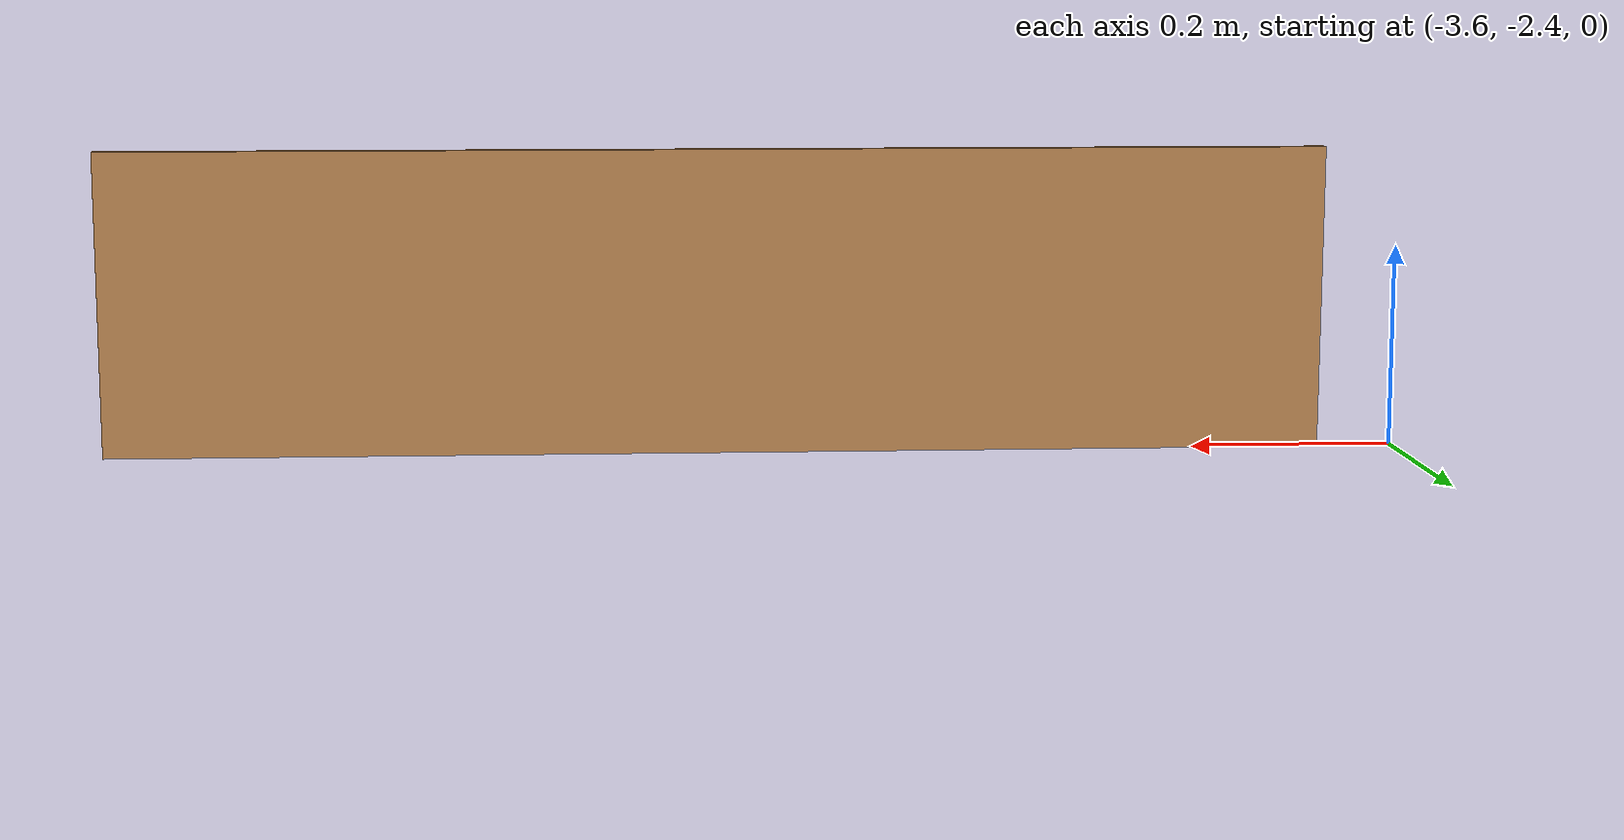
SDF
<?xml version='1.0'?>
<sdf version='1.7'>
  <model name='Wall_1_2m'>
    <pose>-1.7625 -1.2025 0 0 -0 0</pose>
    <link name='Wall_0'>
      <collision name='Wall_0_Collision'>
        <geometry>
          <box>
            <size>1.2 0.01 0.3</size>
          </box>
        </geometry>
        <pose>0 0 0.15 0 -0 0</pose>
      </collision>
      <visual name='Wall_0_Visual'>
        <pose>0 0 0.15 0 -0 0</pose>
        <geometry>
          <box>
            <size>1.2 0.01 0.3</size>
          </box>
        </geometry>
        <material>
          <script>
            <uri>file://media/materials/scripts/gazebo.material</uri>
            <name>Gazebo/Wood</name>
          </script>
          <ambient>1 0.764706 0.305882 1</ambient>
        </material>
        <meta>
          <layer>0</layer>
        </meta>
      </visual>
      <pose>-1.1625 -1.1975 0 0 -0 0</pose>
    </link>
    <static>1</static>
  </model>
</sdf>
